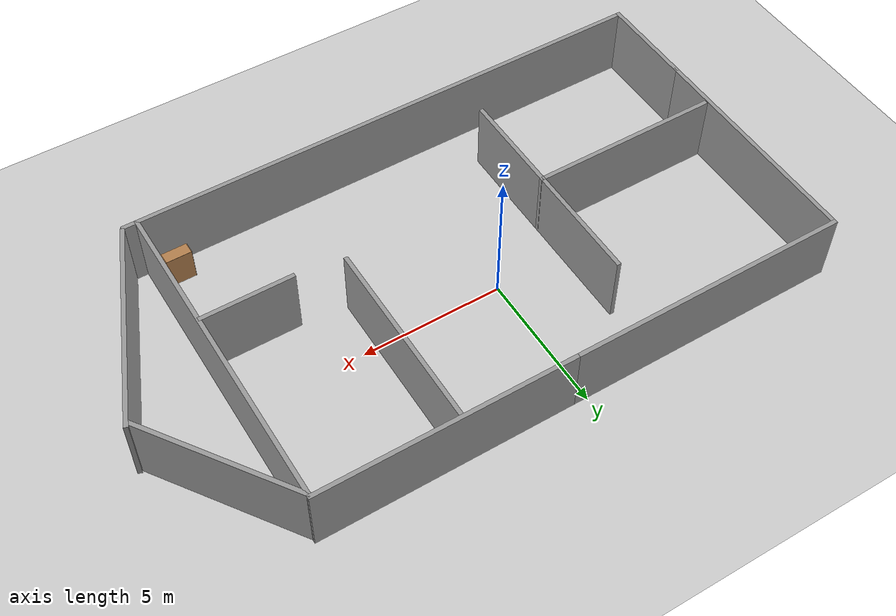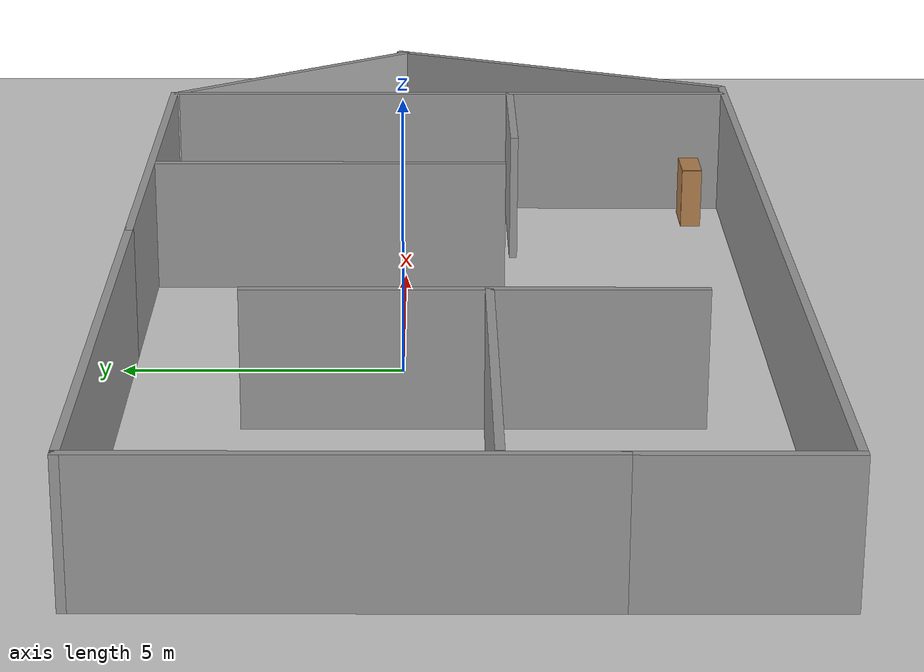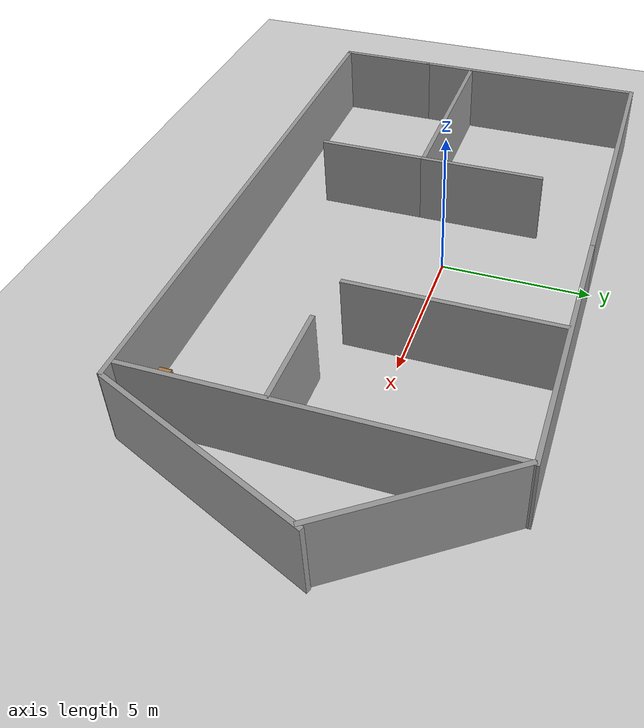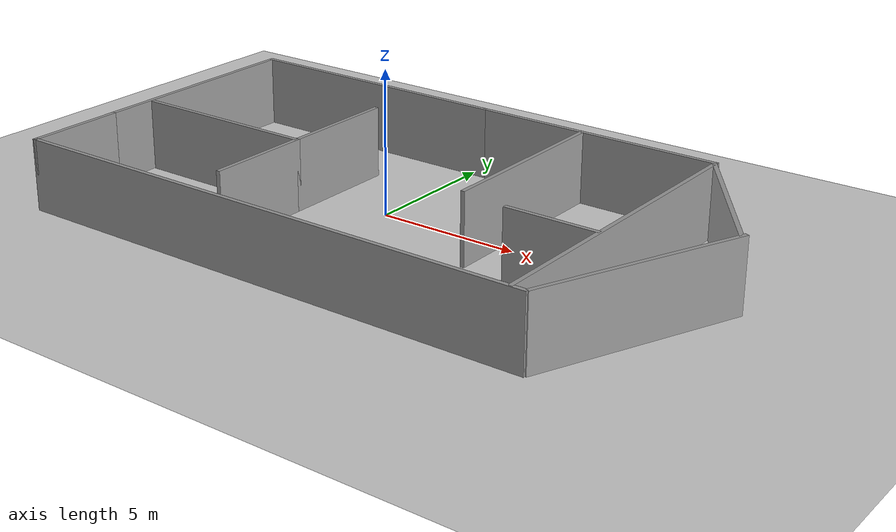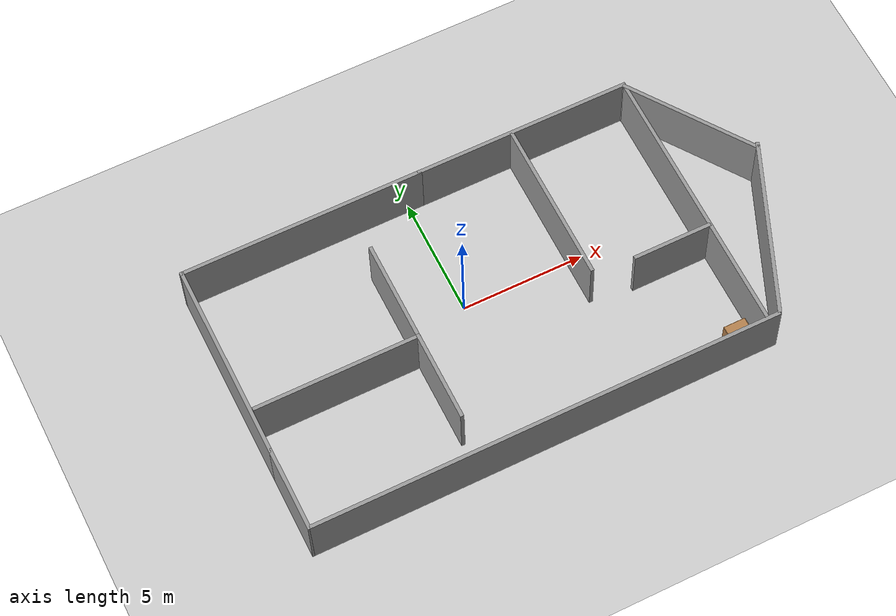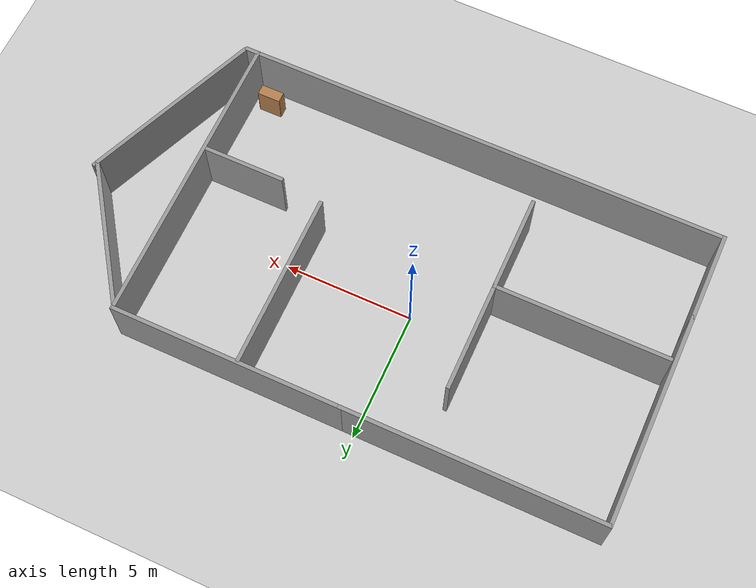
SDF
<sdf version="1.6">
 <world name="default">
  <light name="sun" type="directional">
   <pose>0 0 10 0 -0 0</pose>
   <diffuse>0.8 0.8 0.8 1</diffuse>
   <specular>0.2 0.2 0.2 1</specular>
   <attenuation>
    <range>1000</range>
    <constant>0.9</constant>
    <linear>0.01</linear>
    <quadratic>0.001</quadratic>
   </attenuation>
   <direction>-0.5 0.1 -0.9</direction>
  </light>
  <model name="ground_plane">
   <static>1</static>
   <link name="link">
    <collision name="collision">
     <geometry><plane><normal>0 0 1</normal><size>100 100</size></plane></geometry>
     <surface><friction><ode><mu>100</mu><mu2>50</mu2></ode></friction></surface>
    </collision>
    <visual name="visual">
     <cast_shadows>0</cast_shadows>
     <geometry><plane><normal>0 0 1</normal><size>100 100</size></plane></geometry>
     <material>
      <script><uri>file://media/materials/scripts/gazebo.material</uri><name>Gazebo/Grey</name></script>
     </material>
    </visual>
   </link>
  </model>
  <gravity>0 0 -9.8</gravity>
  <magnetic_field>6e-06 2.3e-05 -4.2e-05</magnetic_field>
  <atmosphere type="adiabatic"/>
  <physics name="default_physics" default="0" type="ode">
   <max_step_size>0.001</max_step_size>
   <real_time_factor>1</real_time_factor>
   <real_time_update_rate>1000</real_time_update_rate>
  </physics>
  <scene><ambient>0.4 0.4 0.4 1</ambient><background>0.7 0.7 0.7 1</background><shadows>1</shadows></scene>
  <spherical_coordinates>
   <surface_model>EARTH_WGS84</surface_model>
   <latitude_deg>0</latitude_deg>
   <longitude_deg>0</longitude_deg>
   <elevation>0</elevation>
   <heading_deg>0</heading_deg>
  </spherical_coordinates>
  <model name="home">
   <pose>1.67037 -0.86765 0 0 -0 0</pose>
   <link name="Wall_0">
    <collision name="Wall_0_Collision">
     <geometry><box><size>8.95633 0.15 2.5</size></box></geometry>
     <pose>0 0 1.25 0 -0 0</pose>
    </collision>
    <visual name="Wall_0_Visual">
     <pose>0 0 1.25 0 -0 0</pose>
     <geometry><box><size>8.95633 0.15 2.5</size></box></geometry>
     <material>
      <script><uri>file://media/materials/scripts/gazebo.material</uri><name>Gazebo/Grey</name></script>
      <ambient>1 1 1 1</ambient>
     </material>
     <meta><layer>0</layer></meta>
    </visual>
    <pose>3.24808 5.725 0 0 -0 0</pose>
   </link>
   <link name="Wall_10">
    <collision name="Wall_10_Collision">
     <geometry><box><size>11.5 0.15 2.5</size></box></geometry>
     <pose>0 0 1.25 0 -0 0</pose>
    </collision>
    <visual name="Wall_10_Visual">
     <pose>0 0 1.25 0 -0 0</pose>
     <geometry><box><size>11.5 0.15 2.5</size></box></geometry>
     <material>
      <script><uri>file://media/materials/scripts/gazebo.material</uri><name>Gazebo/Grey</name></script>
      <ambient>1 1 1 1</ambient>
     </material>
     <meta><layer>0</layer></meta>
    </visual>
    <pose>7.65124 -0.031371 0 0 -0 -1.5708</pose>
   </link>
   <link name="Wall_12">
    <collision name="Wall_12_Collision">
     <geometry><box><size>6.75 0.15 2.5</size></box></geometry>
     <pose>0 0 1.25 0 -0 0</pose>
    </collision>
    <visual name="Wall_12_Visual">
     <pose>0 0 1.25 0 -0 0</pose>
     <geometry><box><size>6.75 0.15 2.5</size></box></geometry>
     <material>
      <script><uri>file://media/materials/scripts/gazebo.material</uri><name>Gazebo/Grey</name></script>
      <ambient>1 1 1 1</ambient>
     </material>
     <meta><layer>0</layer></meta>
    </visual>
    <pose>-7.53095 -0.583586 0 0 -0 0</pose>
   </link>
   <link name="Wall_13">
    <collision name="Wall_13_Collision">
     <geometry><box><size>3.75 0.15 2.5</size></box></geometry>
     <pose>0 0 1.25 0 -0 0</pose>
    </collision>
    <visual name="Wall_13_Visual">
     <pose>0 0 1.25 0 -0 0</pose>
     <geometry><box><size>3.75 0.15 2.5</size></box></geometry>
     <material>
      <script><uri>file://media/materials/scripts/gazebo.material</uri><name>Gazebo/Grey</name></script>
      <ambient>1 1 1 1</ambient>
     </material>
     <meta><layer>0</layer></meta>
    </visual>
    <pose>-4.23095 -2.38359 0 0 -0 -1.5708</pose>
   </link>
   <link name="Wall_15">
    <collision name="Wall_15_Collision">
     <geometry><box><size>4.25 0.15 2.5</size></box></geometry>
     <pose>0 0 1.25 0 -0 0</pose>
    </collision>
    <visual name="Wall_15_Visual">
     <pose>0 0 1.25 0 -0 0</pose>
     <geometry><box><size>4.25 0.15 2.5</size></box></geometry>
     <material>
      <script><uri>file://media/materials/scripts/gazebo.material</uri><name>Gazebo/Grey</name></script>
      <ambient>1 1 1 1</ambient>
     </material>
     <meta><layer>0</layer></meta>
    </visual>
    <pose>-4.23095 1.46641 0 0 -0 1.5708</pose>
   </link>
   <link name="Wall_17">
    <collision name="Wall_17_Collision">
     <geometry><box><size>6.75 0.15 2.5</size></box></geometry>
     <pose>0 0 1.25 0 -0 0</pose>
    </collision>
    <visual name="Wall_17_Visual">
     <pose>0 0 1.25 0 -0 0</pose>
     <geometry><box><size>6.75 0.15 2.5</size></box></geometry>
     <material>
      <script><uri>file://media/materials/scripts/gazebo.material</uri><name>Gazebo/Grey</name></script>
      <ambient>1 1 1 1</ambient>
     </material>
     <meta><layer>0</layer></meta>
    </visual>
    <pose>2.76671 2.33073 0 0 -0 -1.5708</pose>
   </link>
   <link name="Wall_19">
    <collision name="Wall_19_Collision">
     <geometry><box><size>3.25 0.15 2.5</size></box></geometry>
     <pose>0 0 1.25 0 -0 0</pose>
    </collision>
    <visual name="Wall_19_Visual">
     <pose>0 0 1.25 0 -0 0</pose>
     <geometry><box><size>3.25 0.15 2.5</size></box></geometry>
     <material>
      <script><uri>file://media/materials/scripts/gazebo.material</uri><name>Gazebo/Grey</name></script>
      <ambient>1 1 1 1</ambient>
     </material>
     <meta><layer>0</layer></meta>
    </visual>
    <pose>6.03949 -1.26039 0 0 -0 0</pose>
   </link>
   <link name="Wall_2">
    <collision name="Wall_2_Collision">
     <geometry><box><size>5.86018 0.15 2.5</size></box></geometry>
     <pose>0 0 1.25 0 -0 0</pose>
    </collision>
    <visual name="Wall_2_Visual">
     <pose>0 0 1.25 0 -0 0</pose>
     <geometry><box><size>5.86018 0.15 2.5</size></box></geometry>
     <material>
      <script><uri>file://media/materials/scripts/gazebo.material</uri><name>Gazebo/Grey</name></script>
      <ambient>1 1 1 1</ambient>
     </material>
     <meta><layer>0</layer></meta>
    </visual>
    <pose>9.2759 3.29586 0 0 -0 2.17613</pose>
   </link>
   <link name="Wall_4">
    <collision name="Wall_4_Collision">
     <geometry><box><size>10 0.15 2.5</size></box></geometry>
     <pose>0 0 1.25 0 -0 0</pose>
    </collision>
    <visual name="Wall_4_Visual">
     <pose>0 0 1.25 0 -0 0</pose>
     <geometry><box><size>10 0.15 2.5</size></box></geometry>
     <material>
      <script><uri>file://media/materials/scripts/gazebo.material</uri><name>Gazebo/Grey</name></script>
      <ambient>1 1 1 1</ambient>
     </material>
     <meta><layer>0</layer></meta>
    </visual>
    <pose>-6.08009 5.725 0 0 -0 3.14159</pose>
   </link>
   <link name="Wall_5">
    <collision name="Wall_5_Collision">
     <geometry><box><size>8.25 0.15 2.5</size></box></geometry>
     <pose>0 0 1.25 0 -0 0</pose>
    </collision>
    <visual name="Wall_5_Visual">
     <pose>0 0 1.25 0 -0 0</pose>
     <geometry><box><size>8.25 0.15 2.5</size></box></geometry>
     <material>
      <script><uri>file://media/materials/scripts/gazebo.material</uri><name>Gazebo/Grey</name></script>
      <ambient>1 1 1 1</ambient>
     </material>
     <meta><layer>0</layer></meta>
    </visual>
    <pose>-11.0051 1.675 0 0 -0 -1.5708</pose>
   </link>
   <link name="Wall_6">
    <collision name="Wall_6_Collision">
     <geometry><box><size>3.5 0.15 2.5</size></box></geometry>
     <pose>0 0 1.25 0 -0 0</pose>
    </collision>
    <visual name="Wall_6_Visual">
     <pose>0 0 1.25 0 -0 0</pose>
     <geometry><box><size>3.5 0.15 2.5</size></box></geometry>
     <material>
      <script><uri>file://media/materials/scripts/gazebo.material</uri><name>Gazebo/Grey</name></script>
      <ambient>1 1 1 1</ambient>
     </material>
     <meta><layer>0</layer></meta>
    </visual>
    <pose>-11.0051 -4.05 0 0 -0 -1.5708</pose>
   </link>
   <link name="Wall_7">
    <collision name="Wall_7_Collision">
     <geometry><box><size>19.2607 0.15 2.5</size></box></geometry>
     <pose>0 0 1.25 0 -0 0</pose>
    </collision>
    <visual name="Wall_7_Visual">
     <pose>0 0 1.25 0 -0 0</pose>
     <geometry><box><size>19.2607 0.15 2.5</size></box></geometry>
     <material>
      <script><uri>file://media/materials/scripts/gazebo.material</uri><name>Gazebo/Grey</name></script>
      <ambient>1 1 1 1</ambient>
     </material>
     <meta><layer>0</layer></meta>
    </visual>
    <pose>-1.44973 -5.725 0 0 -0 0</pose>
   </link>
   <link name="Wall_8">
    <collision name="Wall_8_Collision">
     <geometry><box><size>7.38476 0.15 2.5</size></box></geometry>
     <pose>0 0 1.25 0 -0 0</pose>
    </collision>
    <visual name="Wall_8_Visual">
     <pose>0 0 1.25 0 -0 0</pose>
     <geometry><box><size>7.38476 0.15 2.5</size></box></geometry>
     <material>
      <script><uri>file://media/materials/scripts/gazebo.material</uri><name>Gazebo/Grey</name></script>
      <ambient>1 1 1 1</ambient>
     </material>
     <meta><layer>0</layer></meta>
    </visual>
    <pose>9.58447 -2.30709 0 0 -0 1.17416</pose>
   </link>
   <static>1</static>
  </model>
  <audio><device>default</device></audio>
  <model name="bookshelf">
   <static>1</static>
   <link name="link">
    <inertial><mass>1</mass></inertial>
    <collision name="back">
     <pose>0 0.005 0.6 0 -0 0</pose>
     <geometry><box><size>0.9 0.01 1.2</size></box></geometry>
    </collision>
    <visual name="visual1">
     <pose>0 0.005 0.6 0 -0 0</pose>
     <geometry><box><size>0.9 0.01 1.2</size></box></geometry>
     <material>
      <script><uri>file://media/materials/scripts/gazebo.material</uri><name>Gazebo/Wood</name></script>
     </material>
    </visual>
    <collision name="left_side">
     <pose>0.45 -0.195 0.6 0 -0 0</pose>
     <geometry><box><size>0.02 0.4 1.2</size></box></geometry>
    </collision>
    <visual name="visual2">
     <pose>0.45 -0.195 0.6 0 -0 0</pose>
     <geometry><box><size>0.02 0.4 1.2</size></box></geometry>
     <material>
      <script><uri>file://media/materials/scripts/gazebo.material</uri><name>Gazebo/Wood</name></script>
     </material>
    </visual>
    <collision name="right_side">
     <pose>-0.45 -0.195 0.6 0 -0 0</pose>
     <geometry><box><size>0.02 0.4 1.2</size></box></geometry>
    </collision>
    <visual name="visual3">
     <pose>-0.45 -0.195 0.6 0 -0 0</pose>
     <geometry><box><size>0.02 0.4 1.2</size></box></geometry>
     <material>
      <script><uri>file://media/materials/scripts/gazebo.material</uri><name>Gazebo/Wood</name></script>
     </material>
    </visual>
    <collision name="bottom">
     <pose>0 -0.195 0.03 0 -0 0</pose>
     <geometry><box><size>0.88 0.4 0.06</size></box></geometry>
    </collision>
    <visual name="visual4">
     <pose>0 -0.195 0.03 0 -0 0</pose>
     <geometry><box><size>0.88 0.4 0.06</size></box></geometry>
     <material>
      <script><uri>file://media/materials/scripts/gazebo.material</uri><name>Gazebo/Wood</name></script>
     </material>
    </visual>
    <collision name="top">
     <pose>0 -0.195 1.19 0 -0 0</pose>
     <geometry><box><size>0.88 0.4 0.02</size></box></geometry>
    </collision>
    <visual name="visual5">
     <pose>0 -0.195 1.19 0 -0 0</pose>
     <geometry><box><size>0.88 0.4 0.02</size></box></geometry>
     <material>
      <script><uri>file://media/materials/scripts/gazebo.material</uri><name>Gazebo/Wood</name></script>
     </material>
    </visual>
    <collision name="low_shelf">
     <pose>0 -0.195 0.43 0 -0 0</pose>
     <geometry><box><size>0.88 0.4 0.02</size></box></geometry>
    </collision>
    <visual name="visual6">
     <pose>0 -0.195 0.43 0 -0 0</pose>
     <geometry><box><size>0.88 0.4 0.02</size></box></geometry>
     <material>
      <script><uri>file://media/materials/scripts/gazebo.material</uri><name>Gazebo/Wood</name></script>
     </material>
    </visual>
    <collision name="high_shelf">
     <pose>0 -0.195 0.8 0 -0 0</pose>
     <geometry><box><size>0.88 0.4 0.02</size></box></geometry>
    </collision>
    <visual name="visual7">
     <pose>0 -0.195 0.8 0 -0 0</pose>
     <geometry><box><size>0.88 0.4 0.02</size></box></geometry>
     <material>
      <script><uri>file://media/materials/scripts/gazebo.material</uri><name>Gazebo/Wood</name></script>
     </material>
    </visual>
   </link>
   <pose>8.5164 -5.66148 0 0 -0 0</pose>
  </model>
 </world>
</sdf>
